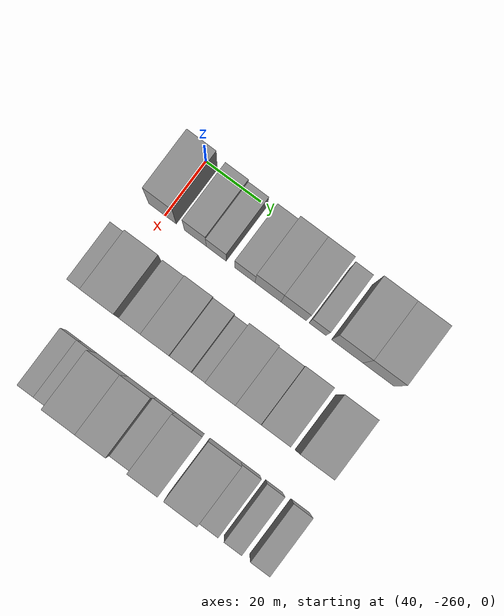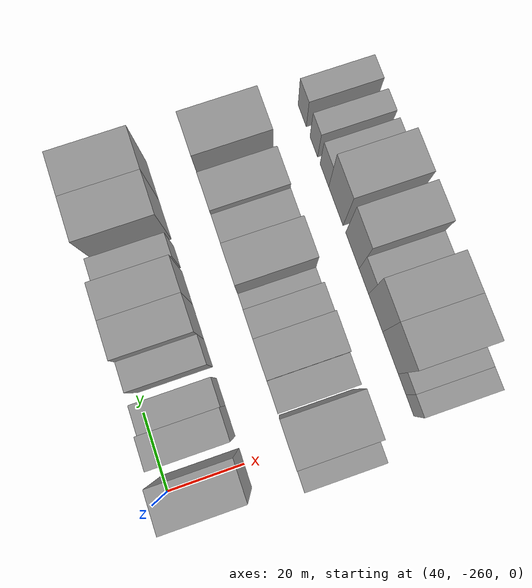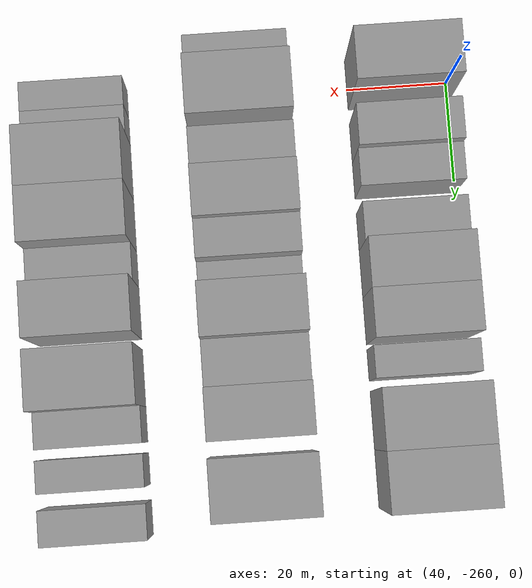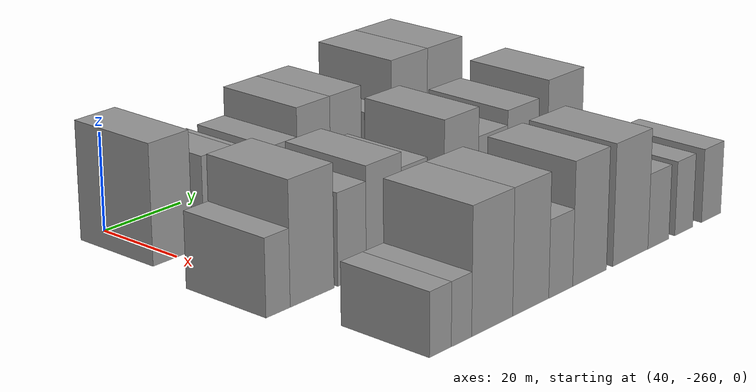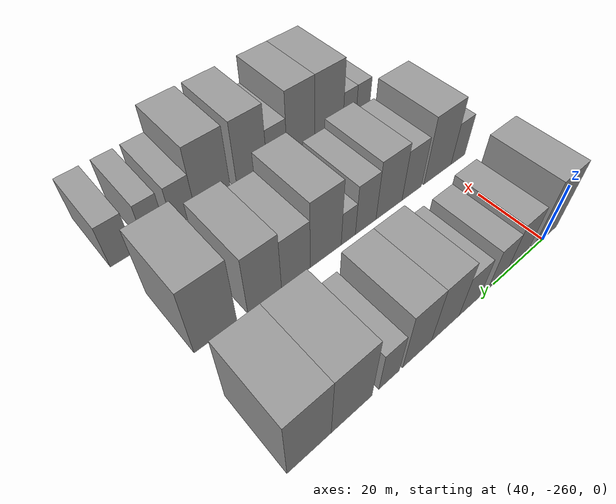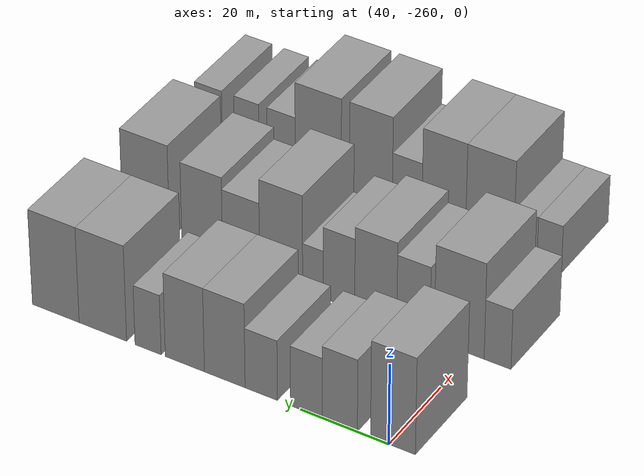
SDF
<sdf version="1.6">
 <world name="default">
  <model name="building_10">
   <static>1</static>
   <pose>50.0000 -260.9141 0 0.000000 0.000000 0.000000</pose>
   <link name="link">
    <pose>0 0 12.00 0 0 0</pose>
    <collision name="collision"><geometry><box><size>20.0000 10.0286 24.0000</size></box></geometry></collision>
    <visual name="visual">
     <cast_shadows>0</cast_shadows>
     <geometry><box><size>20.0000 10.0286 24.0000</size></box></geometry>
     <material>
      <script>
       <uri>model://grey_wall/materials/scripts</uri>
       <uri>model://grey_wall/materials/textures</uri>
       <name>vrc/grey_wall</name>
      </script>
     </material>
    </visual>
   </link>
  </model>
  <model name="building_11">
   <static>1</static>
   <pose>50.0000 -248.8983 0 0.000000 0.000000 0.000000</pose>
   <link name="link">
    <pose>0 0 9.00 0 0 0</pose>
    <collision name="collision"><geometry><box><size>20.0000 8.0029 18.0000</size></box></geometry></collision>
    <visual name="visual">
     <cast_shadows>0</cast_shadows>
     <geometry><box><size>20.0000 8.0029 18.0000</size></box></geometry>
     <material>
      <script>
       <uri>model://grey_wall/materials/scripts</uri>
       <uri>model://grey_wall/materials/textures</uri>
       <name>vrc/grey_wall</name>
      </script>
     </material>
    </visual>
   </link>
  </model>
  <model name="building_12">
   <static>1</static>
   <pose>50.0000 -241.3023 0 0.000000 0.000000 0.000000</pose>
   <link name="link">
    <pose>0 0 7.50 0 0 0</pose>
    <collision name="collision"><geometry><box><size>20.0000 7.1892 15.0000</size></box></geometry></collision>
    <visual name="visual">
     <cast_shadows>0</cast_shadows>
     <geometry><box><size>20.0000 7.1892 15.0000</size></box></geometry>
     <material>
      <script>
       <uri>model://grey_wall/materials/scripts</uri>
       <uri>model://grey_wall/materials/textures</uri>
       <name>vrc/grey_wall</name>
      </script>
     </material>
    </visual>
   </link>
  </model>
  <model name="building_13">
   <static>1</static>
   <pose>50.0000 -230.9784 0 0.000000 0.000000 0.000000</pose>
   <link name="link">
    <pose>0 0 7.50 0 0 0</pose>
    <collision name="collision"><geometry><box><size>20.0000 7.4584 15.0000</size></box></geometry></collision>
    <visual name="visual">
     <cast_shadows>0</cast_shadows>
     <geometry><box><size>20.0000 7.4584 15.0000</size></box></geometry>
     <material>
      <script>
       <uri>model://grey_wall/materials/scripts</uri>
       <uri>model://grey_wall/materials/textures</uri>
       <name>vrc/grey_wall</name>
      </script>
     </material>
    </visual>
   </link>
  </model>
  <model name="building_14">
   <static>1</static>
   <pose>50.0000 -222.5183 0 0.000000 0.000000 0.000000</pose>
   <link name="link">
    <pose>0 0 10.50 0 0 0</pose>
    <collision name="collision"><geometry><box><size>20.0000 9.4620 21.0000</size></box></geometry></collision>
    <visual name="visual">
     <cast_shadows>0</cast_shadows>
     <geometry><box><size>20.0000 9.4620 21.0000</size></box></geometry>
     <material>
      <script>
       <uri>model://grey_wall/materials/scripts</uri>
       <uri>model://grey_wall/materials/textures</uri>
       <name>vrc/grey_wall</name>
      </script>
     </material>
    </visual>
   </link>
  </model>
  <model name="building_15">
   <static>1</static>
   <pose>50.0000 -213.1940 0 0.000000 0.000000 0.000000</pose>
   <link name="link">
    <pose>0 0 10.50 0 0 0</pose>
    <collision name="collision"><geometry><box><size>20.0000 9.1866 21.0000</size></box></geometry></collision>
    <visual name="visual">
     <cast_shadows>0</cast_shadows>
     <geometry><box><size>20.0000 9.1866 21.0000</size></box></geometry>
     <material>
      <script>
       <uri>model://grey_wall/materials/scripts</uri>
       <uri>model://grey_wall/materials/textures</uri>
       <name>vrc/grey_wall</name>
      </script>
     </material>
    </visual>
   </link>
  </model>
  <model name="building_16">
   <static>1</static>
   <pose>50.0000 -204.5228 0 0.000000 0.000000 0.000000</pose>
   <link name="link">
    <pose>0 0 7.50 0 0 0</pose>
    <collision name="collision"><geometry><box><size>20.0000 6.1557 15.0000</size></box></geometry></collision>
    <visual name="visual">
     <cast_shadows>0</cast_shadows>
     <geometry><box><size>20.0000 6.1557 15.0000</size></box></geometry>
     <material>
      <script>
       <uri>model://grey_wall/materials/scripts</uri>
       <uri>model://grey_wall/materials/textures</uri>
       <name>vrc/grey_wall</name>
      </script>
     </material>
    </visual>
   </link>
  </model>
  <model name="building_17">
   <static>1</static>
   <pose>50.0000 -193.7689 0 0.000000 0.000000 0.000000</pose>
   <link name="link">
    <pose>0 0 12.00 0 0 0</pose>
    <collision name="collision"><geometry><box><size>20.0000 11.3522 24.0000</size></box></geometry></collision>
    <visual name="visual">
     <cast_shadows>0</cast_shadows>
     <geometry><box><size>20.0000 11.3522 24.0000</size></box></geometry>
     <material>
      <script>
       <uri>model://grey_wall/materials/scripts</uri>
       <uri>model://grey_wall/materials/textures</uri>
       <name>vrc/grey_wall</name>
      </script>
     </material>
    </visual>
   </link>
  </model>
  <model name="building_18">
   <static>1</static>
   <pose>50.0000 -182.4504 0 0.000000 0.000000 0.000000</pose>
   <link name="link">
    <pose>0 0 12.00 0 0 0</pose>
    <collision name="collision"><geometry><box><size>20.0000 11.2848 24.0000</size></box></geometry></collision>
    <visual name="visual">
     <cast_shadows>0</cast_shadows>
     <geometry><box><size>20.0000 11.2848 24.0000</size></box></geometry>
     <material>
      <script>
       <uri>model://grey_wall/materials/scripts</uri>
       <uri>model://grey_wall/materials/textures</uri>
       <name>vrc/grey_wall</name>
      </script>
     </material>
    </visual>
   </link>
  </model>
  <model name="building_91">
   <static>1</static>
   <pose>82.0000 -265.9827 0 0.000000 0.000000 0.000000</pose>
   <link name="link">
    <pose>0 0 7.50 0 0 0</pose>
    <collision name="collision"><geometry><box><size>20.0000 6.0891 15.0000</size></box></geometry></collision>
    <visual name="visual">
     <cast_shadows>0</cast_shadows>
     <geometry><box><size>20.0000 6.0891 15.0000</size></box></geometry>
     <material>
      <script>
       <uri>model://grey_wall/materials/scripts</uri>
       <uri>model://grey_wall/materials/textures</uri>
       <name>vrc/grey_wall</name>
      </script>
     </material>
    </visual>
   </link>
  </model>
  <model name="building_92">
   <static>1</static>
   <pose>82.0000 -257.2447 0 0.000000 0.000000 0.000000</pose>
   <link name="link">
    <pose>0 0 12.00 0 0 0</pose>
    <collision name="collision"><geometry><box><size>20.0000 11.3870 24.0000</size></box></geometry></collision>
    <visual name="visual">
     <cast_shadows>0</cast_shadows>
     <geometry><box><size>20.0000 11.3870 24.0000</size></box></geometry>
     <material>
      <script>
       <uri>model://grey_wall/materials/scripts</uri>
       <uri>model://grey_wall/materials/textures</uri>
       <name>vrc/grey_wall</name>
      </script>
     </material>
    </visual>
   </link>
  </model>
  <model name="building_93">
   <static>1</static>
   <pose>82.0000 -246.7193 0 0.000000 0.000000 0.000000</pose>
   <link name="link">
    <pose>0 0 9.00 0 0 0</pose>
    <collision name="collision"><geometry><box><size>20.0000 7.6638 18.0000</size></box></geometry></collision>
    <visual name="visual">
     <cast_shadows>0</cast_shadows>
     <geometry><box><size>20.0000 7.6638 18.0000</size></box></geometry>
     <material>
      <script>
       <uri>model://grey_wall/materials/scripts</uri>
       <uri>model://grey_wall/materials/textures</uri>
       <name>vrc/grey_wall</name>
      </script>
     </material>
    </visual>
   </link>
  </model>
  <model name="building_94">
   <static>1</static>
   <pose>82.0000 -237.9976 0 0.000000 0.000000 0.000000</pose>
   <link name="link">
    <pose>0 0 10.50 0 0 0</pose>
    <collision name="collision"><geometry><box><size>20.0000 9.7795 21.0000</size></box></geometry></collision>
    <visual name="visual">
     <cast_shadows>0</cast_shadows>
     <geometry><box><size>20.0000 9.7795 21.0000</size></box></geometry>
     <material>
      <script>
       <uri>model://grey_wall/materials/scripts</uri>
       <uri>model://grey_wall/materials/textures</uri>
       <name>vrc/grey_wall</name>
      </script>
     </material>
    </visual>
   </link>
  </model>
  <model name="building_95">
   <static>1</static>
   <pose>82.0000 -229.4237 0 0.000000 0.000000 0.000000</pose>
   <link name="link">
    <pose>0 0 9.00 0 0 0</pose>
    <collision name="collision"><geometry><box><size>20.0000 7.3684 18.0000</size></box></geometry></collision>
    <visual name="visual">
     <cast_shadows>0</cast_shadows>
     <geometry><box><size>20.0000 7.3684 18.0000</size></box></geometry>
     <material>
      <script>
       <uri>model://grey_wall/materials/scripts</uri>
       <uri>model://grey_wall/materials/textures</uri>
       <name>vrc/grey_wall</name>
      </script>
     </material>
    </visual>
   </link>
  </model>
  <model name="building_96">
   <static>1</static>
   <pose>82.0000 -223.2938 0 0.000000 0.000000 0.000000</pose>
   <link name="link">
    <pose>0 0 6.00 0 0 0</pose>
    <collision name="collision"><geometry><box><size>20.0000 4.8915 12.0000</size></box></geometry></collision>
    <visual name="visual">
     <cast_shadows>0</cast_shadows>
     <geometry><box><size>20.0000 4.8915 12.0000</size></box></geometry>
     <material>
      <script>
       <uri>model://grey_wall/materials/scripts</uri>
       <uri>model://grey_wall/materials/textures</uri>
       <name>vrc/grey_wall</name>
      </script>
     </material>
    </visual>
   </link>
  </model>
  <model name="building_97">
   <static>1</static>
   <pose>82.0000 -215.7499 0 0.000000 0.000000 0.000000</pose>
   <link name="link">
    <pose>0 0 12.00 0 0 0</pose>
    <collision name="collision"><geometry><box><size>20.0000 10.1962 24.0000</size></box></geometry></collision>
    <visual name="visual">
     <cast_shadows>0</cast_shadows>
     <geometry><box><size>20.0000 10.1962 24.0000</size></box></geometry>
     <material>
      <script>
       <uri>model://grey_wall/materials/scripts</uri>
       <uri>model://grey_wall/materials/textures</uri>
       <name>vrc/grey_wall</name>
      </script>
     </material>
    </visual>
   </link>
  </model>
  <model name="building_98">
   <static>1</static>
   <pose>82.0000 -206.2066 0 0.000000 0.000000 0.000000</pose>
   <link name="link">
    <pose>0 0 9.00 0 0 0</pose>
    <collision name="collision"><geometry><box><size>20.0000 8.8903 18.0000</size></box></geometry></collision>
    <visual name="visual">
     <cast_shadows>0</cast_shadows>
     <geometry><box><size>20.0000 8.8903 18.0000</size></box></geometry>
     <material>
      <script>
       <uri>model://grey_wall/materials/scripts</uri>
       <uri>model://grey_wall/materials/textures</uri>
       <name>vrc/grey_wall</name>
      </script>
     </material>
    </visual>
   </link>
  </model>
  <model name="building_99">
   <static>1</static>
   <pose>82.0000 -196.8253 0 0.000000 0.000000 0.000000</pose>
   <link name="link">
    <pose>0 0 10.50 0 0 0</pose>
    <collision name="collision"><geometry><box><size>20.0000 9.8723 21.0000</size></box></geometry></collision>
    <visual name="visual">
     <cast_shadows>0</cast_shadows>
     <geometry><box><size>20.0000 9.8723 21.0000</size></box></geometry>
     <material>
      <script>
       <uri>model://grey_wall/materials/scripts</uri>
       <uri>model://grey_wall/materials/textures</uri>
       <name>vrc/grey_wall</name>
      </script>
     </material>
    </visual>
   </link>
  </model>
  <model name="building_100">
   <static>1</static>
   <pose>82.0000 -183.1385 0 0.000000 0.000000 0.000000</pose>
   <link name="link">
    <pose>0 0 12.00 0 0 0</pose>
    <collision name="collision"><geometry><box><size>20.0000 11.5013 24.0000</size></box></geometry></collision>
    <visual name="visual">
     <cast_shadows>0</cast_shadows>
     <geometry><box><size>20.0000 11.5013 24.0000</size></box></geometry>
     <material>
      <script>
       <uri>model://grey_wall/materials/scripts</uri>
       <uri>model://grey_wall/materials/textures</uri>
       <name>vrc/grey_wall</name>
      </script>
     </material>
    </visual>
   </link>
  </model>
  <model name="building_169">
   <static>1</static>
   <pose>114.0000 -259.9375 0 0.000000 0.000000 0.000000</pose>
   <link name="link">
    <pose>0 0 6.00 0 0 0</pose>
    <collision name="collision"><geometry><box><size>20.0000 5.6962 12.0000</size></box></geometry></collision>
    <visual name="visual">
     <cast_shadows>0</cast_shadows>
     <geometry><box><size>20.0000 5.6962 12.0000</size></box></geometry>
     <material>
      <script>
       <uri>model://grey_wall/materials/scripts</uri>
       <uri>model://grey_wall/materials/textures</uri>
       <name>vrc/grey_wall</name>
      </script>
     </material>
    </visual>
   </link>
  </model>
  <model name="building_170">
   <static>1</static>
   <pose>114.0000 -254.3724 0 0.000000 0.000000 0.000000</pose>
   <link name="link">
    <pose>0 0 6.00 0 0 0</pose>
    <collision name="collision"><geometry><box><size>20.0000 5.4340 12.0000</size></box></geometry></collision>
    <visual name="visual">
     <cast_shadows>0</cast_shadows>
     <geometry><box><size>20.0000 5.4340 12.0000</size></box></geometry>
     <material>
      <script>
       <uri>model://grey_wall/materials/scripts</uri>
       <uri>model://grey_wall/materials/textures</uri>
       <name>vrc/grey_wall</name>
      </script>
     </material>
    </visual>
   </link>
  </model>
  <model name="building_171">
   <static>1</static>
   <pose>114.0000 -246.0169 0 0.000000 0.000000 0.000000</pose>
   <link name="link">
    <pose>0 0 12.00 0 0 0</pose>
    <collision name="collision"><geometry><box><size>20.0000 11.2771 24.0000</size></box></geometry></collision>
    <visual name="visual">
     <cast_shadows>0</cast_shadows>
     <geometry><box><size>20.0000 11.2771 24.0000</size></box></geometry>
     <material>
      <script>
       <uri>model://grey_wall/materials/scripts</uri>
       <uri>model://grey_wall/materials/textures</uri>
       <name>vrc/grey_wall</name>
      </script>
     </material>
    </visual>
   </link>
  </model>
  <model name="building_172">
   <static>1</static>
   <pose>114.0000 -235.2030 0 0.000000 0.000000 0.000000</pose>
   <link name="link">
    <pose>0 0 12.00 0 0 0</pose>
    <collision name="collision"><geometry><box><size>20.0000 10.3506 24.0000</size></box></geometry></collision>
    <visual name="visual">
     <cast_shadows>0</cast_shadows>
     <geometry><box><size>20.0000 10.3506 24.0000</size></box></geometry>
     <material>
      <script>
       <uri>model://grey_wall/materials/scripts</uri>
       <uri>model://grey_wall/materials/textures</uri>
       <name>vrc/grey_wall</name>
      </script>
     </material>
    </visual>
   </link>
  </model>
  <model name="building_173">
   <static>1</static>
   <pose>114.0000 -226.4839 0 0.000000 0.000000 0.000000</pose>
   <link name="link">
    <pose>0 0 7.50 0 0 0</pose>
    <collision name="collision"><geometry><box><size>20.0000 7.0877 15.0000</size></box></geometry></collision>
    <visual name="visual">
     <cast_shadows>0</cast_shadows>
     <geometry><box><size>20.0000 7.0877 15.0000</size></box></geometry>
     <material>
      <script>
       <uri>model://grey_wall/materials/scripts</uri>
       <uri>model://grey_wall/materials/textures</uri>
       <name>vrc/grey_wall</name>
      </script>
     </material>
    </visual>
   </link>
  </model>
  <model name="building_174">
   <static>1</static>
   <pose>114.0000 -217.7899 0 0.000000 0.000000 0.000000</pose>
   <link name="link">
    <pose>0 0 12.00 0 0 0</pose>
    <collision name="collision"><geometry><box><size>20.0000 10.3003 24.0000</size></box></geometry></collision>
    <visual name="visual">
     <cast_shadows>0</cast_shadows>
     <geometry><box><size>20.0000 10.3003 24.0000</size></box></geometry>
     <material>
      <script>
       <uri>model://grey_wall/materials/scripts</uri>
       <uri>model://grey_wall/materials/textures</uri>
       <name>vrc/grey_wall</name>
      </script>
     </material>
    </visual>
   </link>
  </model>
  <model name="building_175">
   <static>1</static>
   <pose>114.0000 -205.0342 0 0.000000 0.000000 0.000000</pose>
   <link name="link">
    <pose>0 0 12.00 0 0 0</pose>
    <collision name="collision"><geometry><box><size>20.0000 11.2111 24.0000</size></box></geometry></collision>
    <visual name="visual">
     <cast_shadows>0</cast_shadows>
     <geometry><box><size>20.0000 11.2111 24.0000</size></box></geometry>
     <material>
      <script>
       <uri>model://grey_wall/materials/scripts</uri>
       <uri>model://grey_wall/materials/textures</uri>
       <name>vrc/grey_wall</name>
      </script>
     </material>
    </visual>
   </link>
  </model>
  <model name="building_176">
   <static>1</static>
   <pose>114.0000 -195.9820 0 0.000000 0.000000 0.000000</pose>
   <link name="link">
    <pose>0 0 7.50 0 0 0</pose>
    <collision name="collision"><geometry><box><size>20.0000 6.8932 15.0000</size></box></geometry></collision>
    <visual name="visual">
     <cast_shadows>0</cast_shadows>
     <geometry><box><size>20.0000 6.8932 15.0000</size></box></geometry>
     <material>
      <script>
       <uri>model://grey_wall/materials/scripts</uri>
       <uri>model://grey_wall/materials/textures</uri>
       <name>vrc/grey_wall</name>
      </script>
     </material>
    </visual>
   </link>
  </model>
  <model name="building_177">
   <static>1</static>
   <pose>114.0000 -187.4762 0 0.000000 0.000000 0.000000</pose>
   <link name="link">
    <pose>0 0 7.50 0 0 0</pose>
    <collision name="collision"><geometry><box><size>20.0000 6.1184 15.0000</size></box></geometry></collision>
    <visual name="visual">
     <cast_shadows>0</cast_shadows>
     <geometry><box><size>20.0000 6.1184 15.0000</size></box></geometry>
     <material>
      <script>
       <uri>model://grey_wall/materials/scripts</uri>
       <uri>model://grey_wall/materials/textures</uri>
       <name>vrc/grey_wall</name>
      </script>
     </material>
    </visual>
   </link>
  </model>
  <model name="building_178">
   <static>1</static>
   <pose>114.0000 -178.0680 0 0.000000 0.000000 0.000000</pose>
   <link name="link">
    <pose>0 0 7.50 0 0 0</pose>
    <collision name="collision"><geometry><box><size>20.0000 6.6980 15.0000</size></box></geometry></collision>
    <visual name="visual">
     <cast_shadows>0</cast_shadows>
     <geometry><box><size>20.0000 6.6980 15.0000</size></box></geometry>
     <material>
      <script>
       <uri>model://grey_wall/materials/scripts</uri>
       <uri>model://grey_wall/materials/textures</uri>
       <name>vrc/grey_wall</name>
      </script>
     </material>
    </visual>
   </link>
  </model>
 </world>
</sdf>
